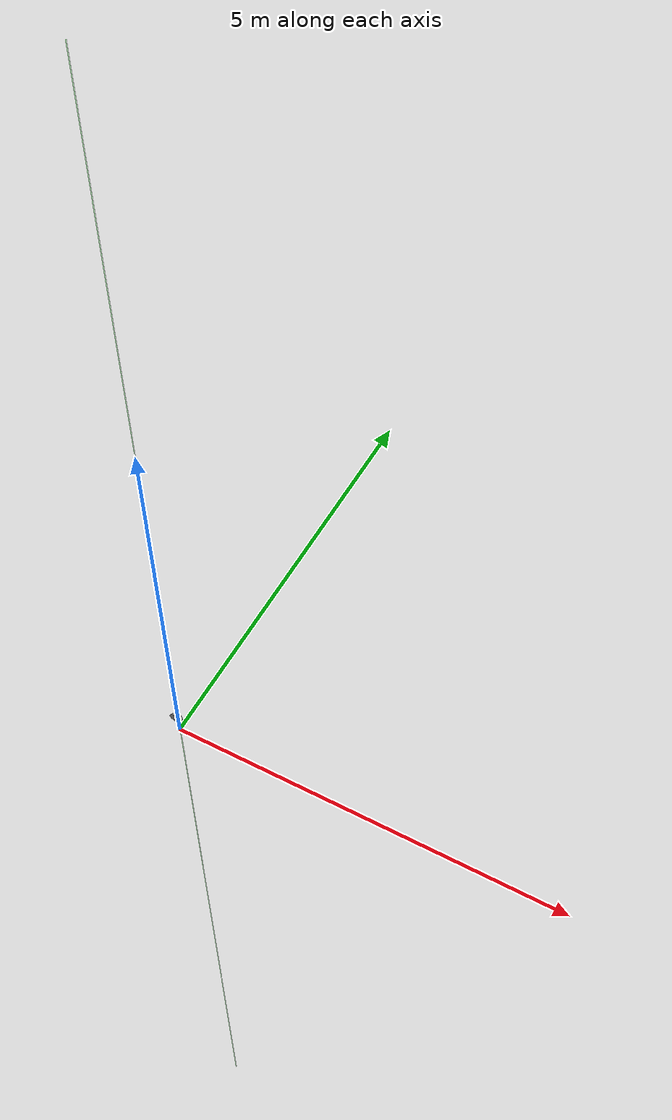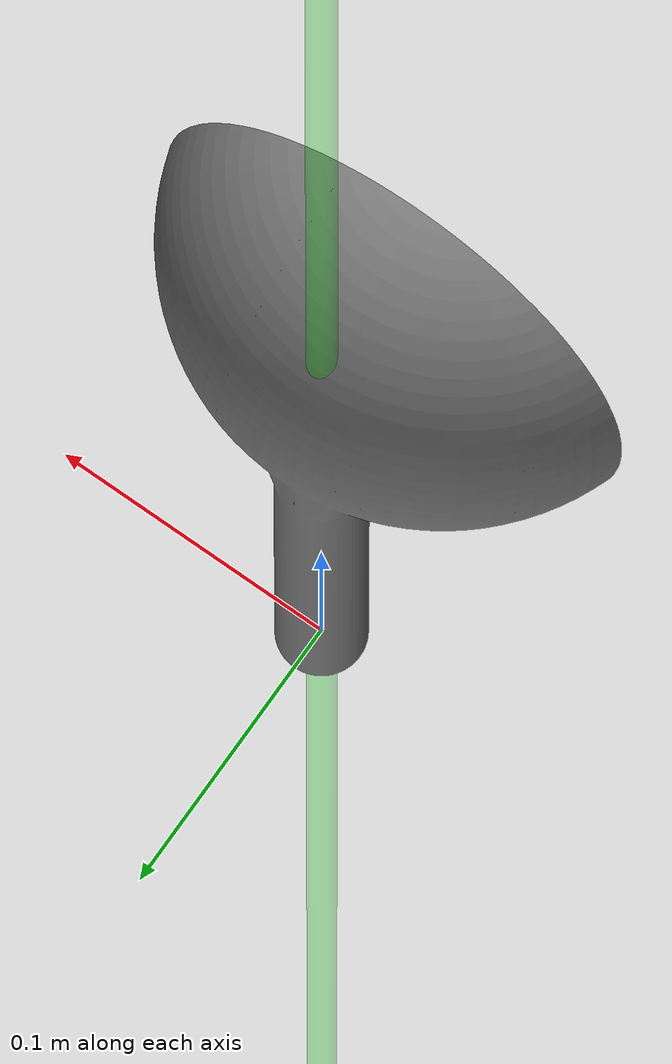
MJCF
<mujoco model="custom_hand">
    <asset>
        <mesh name="hand" file="/home/bigaspirations/Desktop/Github/Big-Aspirations/Robosuite/Code/ball_thrower_after_coacd.stl" scale="0.001 0.001 0.001"/>
    </asset>
    <worldbody>
        <body name="right_gripper" pos="0 0 0" quat="0.707107 0 0 -0.707107">

            <geom pos="0 0 0." quat="0.707107 0 0 0.707107" type="mesh" mesh="hand"  group="0" name="hand_collision"/>

            <geom pos="0 0 0." quat="0.707107 0 0 0.707107" type="mesh" mesh="hand"  group="1" name="hand_visual"/>

            <!-- This site was added for visualization. -->
            <body name="eef" pos="0 0 0.097" quat="1 0 0 0">
                <site name="ee_x" pos="0.1 0 0" size="0.005 .1"  quat="0.707105  0 0.707108 0 " rgba="1 0 0 0" type="cylinder" group="1"/>
                <site name="ee_y" pos="0 0.1 0" size="0.005 .1" quat="0.707105 0.707108 0 0" rgba="0 1 0 0" type="cylinder" group="1"/>
                <site name="ee_z" pos="0 0 0.1" size="0.005 .1" quat="1 0 0 0" rgba="0 0 1 0" type="cylinder" group="1"/>
                <!-- This site was added for visualization. -->
                <site name="grip_site_cylinder" pos="0 0 0" size="0.005 10" rgba="0 1 0 0.3" type="cylinder" group="1"/>
            </body>
        </body>
    </worldbody>
</mujoco>
